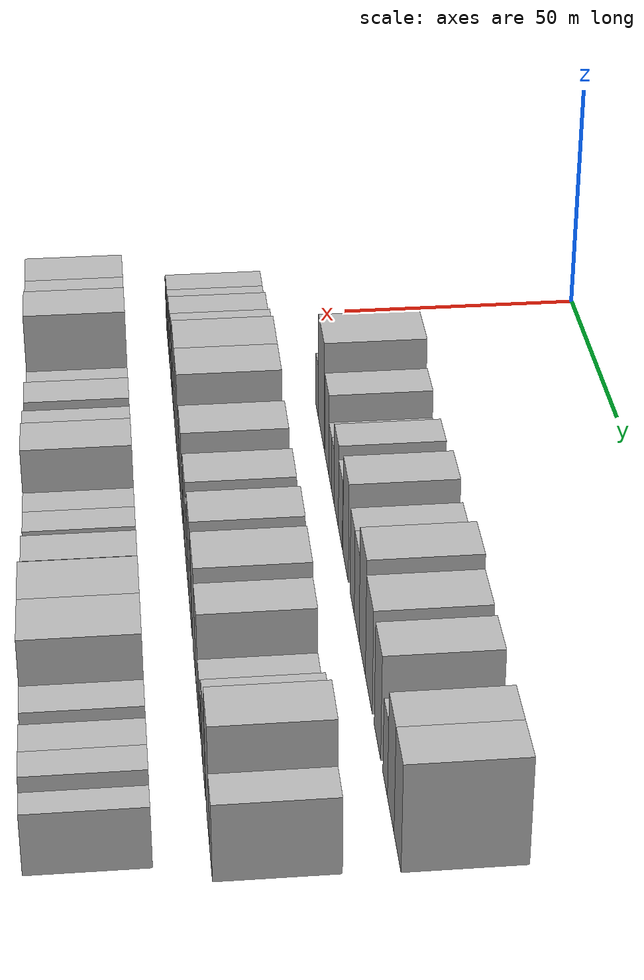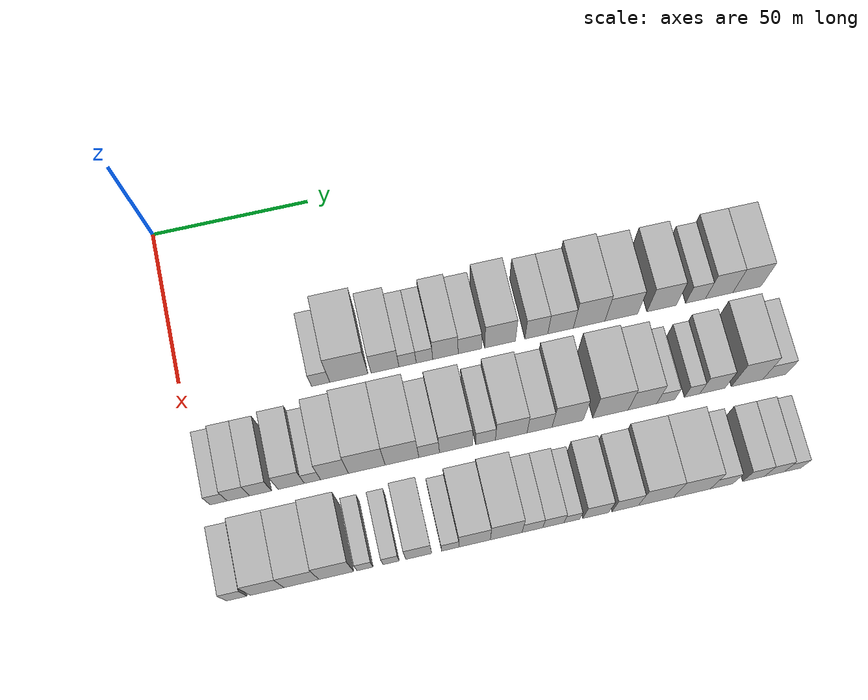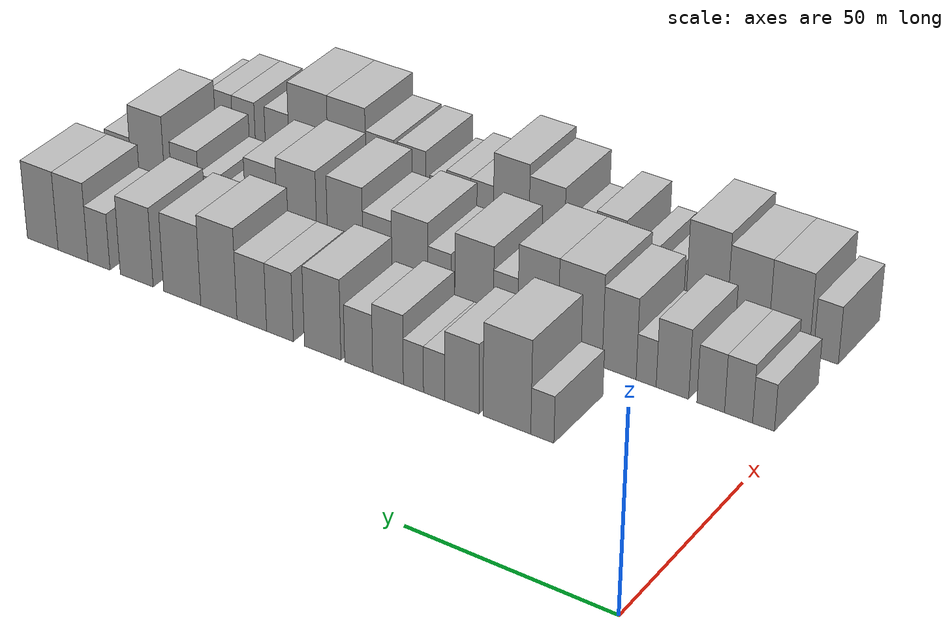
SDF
<sdf version="1.6">
 <world name="default">
  <model name="building_40">
   <static>1</static>
   <pose>50.0000 42.2225 0 0.000000 0.000000 0.000000</pose>
   <link name="link">
    <pose>0 0 6.00 0 0 0</pose>
    <collision name="collision"><geometry><box><size>20.0000 5.7035 12.0000</size></box></geometry></collision>
    <visual name="visual">
     <cast_shadows>0</cast_shadows>
     <geometry><box><size>20.0000 5.7035 12.0000</size></box></geometry>
     <material>
      <script>
       <uri>model://HANNAS_wall/materials/scripts</uri>
       <uri>model://HANNAS_wall/materials/textures</uri>
       <name>vrc/HANNAS_wall</name>
      </script>
     </material>
    </visual>
   </link>
  </model>
  <model name="building_41">
   <static>1</static>
   <pose>50.0000 51.0257 0 0.000000 0.000000 0.000000</pose>
   <link name="link">
    <pose>0 0 12.00 0 0 0</pose>
    <collision name="collision"><geometry><box><size>20.0000 11.9029 24.0000</size></box></geometry></collision>
    <visual name="visual">
     <cast_shadows>0</cast_shadows>
     <geometry><box><size>20.0000 11.9029 24.0000</size></box></geometry>
     <material>
      <script>
       <uri>model://HANNAS_wall/materials/scripts</uri>
       <uri>model://HANNAS_wall/materials/textures</uri>
       <name>vrc/HANNAS_wall</name>
      </script>
     </material>
    </visual>
   </link>
  </model>
  <model name="building_42">
   <static>1</static>
   <pose>50.0000 62.3337 0 0.000000 0.000000 0.000000</pose>
   <link name="link">
    <pose>0 0 9.00 0 0 0</pose>
    <collision name="collision"><geometry><box><size>20.0000 8.7130 18.0000</size></box></geometry></collision>
    <visual name="visual">
     <cast_shadows>0</cast_shadows>
     <geometry><box><size>20.0000 8.7130 18.0000</size></box></geometry>
     <material>
      <script>
       <uri>model://HANNAS_wall/materials/scripts</uri>
       <uri>model://HANNAS_wall/materials/textures</uri>
       <name>vrc/HANNAS_wall</name>
      </script>
     </material>
    </visual>
   </link>
  </model>
  <model name="building_43">
   <static>1</static>
   <pose>50.0000 69.3938 0 0.000000 0.000000 0.000000</pose>
   <link name="link">
    <pose>0 0 6.00 0 0 0</pose>
    <collision name="collision"><geometry><box><size>20.0000 5.4072 12.0000</size></box></geometry></collision>
    <visual name="visual">
     <cast_shadows>0</cast_shadows>
     <geometry><box><size>20.0000 5.4072 12.0000</size></box></geometry>
     <material>
      <script>
       <uri>model://HANNAS_wall/materials/scripts</uri>
       <uri>model://HANNAS_wall/materials/textures</uri>
       <name>vrc/HANNAS_wall</name>
      </script>
     </material>
    </visual>
   </link>
  </model>
  <model name="building_44">
   <static>1</static>
   <pose>50.0000 74.6967 0 0.000000 0.000000 0.000000</pose>
   <link name="link">
    <pose>0 0 6.00 0 0 0</pose>
    <collision name="collision"><geometry><box><size>20.0000 5.1987 12.0000</size></box></geometry></collision>
    <visual name="visual">
     <cast_shadows>0</cast_shadows>
     <geometry><box><size>20.0000 5.1987 12.0000</size></box></geometry>
     <material>
      <script>
       <uri>model://HANNAS_wall/materials/scripts</uri>
       <uri>model://HANNAS_wall/materials/textures</uri>
       <name>vrc/HANNAS_wall</name>
      </script>
     </material>
    </visual>
   </link>
  </model>
  <model name="building_45">
   <static>1</static>
   <pose>50.0000 81.2949 0 0.000000 0.000000 0.000000</pose>
   <link name="link">
    <pose>0 0 9.00 0 0 0</pose>
    <collision name="collision"><geometry><box><size>20.0000 7.9976 18.0000</size></box></geometry></collision>
    <visual name="visual">
     <cast_shadows>0</cast_shadows>
     <geometry><box><size>20.0000 7.9976 18.0000</size></box></geometry>
     <material>
      <script>
       <uri>model://HANNAS_wall/materials/scripts</uri>
       <uri>model://HANNAS_wall/materials/textures</uri>
       <name>vrc/HANNAS_wall</name>
      </script>
     </material>
    </visual>
   </link>
  </model>
  <model name="building_46">
   <static>1</static>
   <pose>50.0000 88.9735 0 0.000000 0.000000 0.000000</pose>
   <link name="link">
    <pose>0 0 7.50 0 0 0</pose>
    <collision name="collision"><geometry><box><size>20.0000 7.3596 15.0000</size></box></geometry></collision>
    <visual name="visual">
     <cast_shadows>0</cast_shadows>
     <geometry><box><size>20.0000 7.3596 15.0000</size></box></geometry>
     <material>
      <script>
       <uri>model://HANNAS_wall/materials/scripts</uri>
       <uri>model://HANNAS_wall/materials/textures</uri>
       <name>vrc/HANNAS_wall</name>
      </script>
     </material>
    </visual>
   </link>
  </model>
  <model name="building_47">
   <static>1</static>
   <pose>50.0000 98.5302 0 0.000000 0.000000 0.000000</pose>
   <link name="link">
    <pose>0 0 10.50 0 0 0</pose>
    <collision name="collision"><geometry><box><size>20.0000 9.7538 21.0000</size></box></geometry></collision>
    <visual name="visual">
     <cast_shadows>0</cast_shadows>
     <geometry><box><size>20.0000 9.7538 21.0000</size></box></geometry>
     <material>
      <script>
       <uri>model://HANNAS_wall/materials/scripts</uri>
       <uri>model://HANNAS_wall/materials/textures</uri>
       <name>vrc/HANNAS_wall</name>
      </script>
     </material>
    </visual>
   </link>
  </model>
  <model name="building_48">
   <static>1</static>
   <pose>50.0000 110.0364 0 0.000000 0.000000 0.000000</pose>
   <link name="link">
    <pose>0 0 9.00 0 0 0</pose>
    <collision name="collision"><geometry><box><size>20.0000 7.2588 18.0000</size></box></geometry></collision>
    <visual name="visual">
     <cast_shadows>0</cast_shadows>
     <geometry><box><size>20.0000 7.2588 18.0000</size></box></geometry>
     <material>
      <script>
       <uri>model://HANNAS_wall/materials/scripts</uri>
       <uri>model://HANNAS_wall/materials/textures</uri>
       <name>vrc/HANNAS_wall</name>
      </script>
     </material>
    </visual>
   </link>
  </model>
  <model name="building_49">
   <static>1</static>
   <pose>50.0000 117.7422 0 0.000000 0.000000 0.000000</pose>
   <link name="link">
    <pose>0 0 9.00 0 0 0</pose>
    <collision name="collision"><geometry><box><size>20.0000 8.1528 18.0000</size></box></geometry></collision>
    <visual name="visual">
     <cast_shadows>0</cast_shadows>
     <geometry><box><size>20.0000 8.1528 18.0000</size></box></geometry>
     <material>
      <script>
       <uri>model://HANNAS_wall/materials/scripts</uri>
       <uri>model://HANNAS_wall/materials/textures</uri>
       <name>vrc/HANNAS_wall</name>
      </script>
     </material>
    </visual>
   </link>
  </model>
  <model name="building_50">
   <static>1</static>
   <pose>50.0000 126.8508 0 0.000000 0.000000 0.000000</pose>
   <link name="link">
    <pose>0 0 12.00 0 0 0</pose>
    <collision name="collision"><geometry><box><size>20.0000 10.0644 24.0000</size></box></geometry></collision>
    <visual name="visual">
     <cast_shadows>0</cast_shadows>
     <geometry><box><size>20.0000 10.0644 24.0000</size></box></geometry>
     <material>
      <script>
       <uri>model://HANNAS_wall/materials/scripts</uri>
       <uri>model://HANNAS_wall/materials/textures</uri>
       <name>vrc/HANNAS_wall</name>
      </script>
     </material>
    </visual>
   </link>
  </model>
  <model name="building_51">
   <static>1</static>
   <pose>50.0000 137.1314 0 0.000000 0.000000 0.000000</pose>
   <link name="link">
    <pose>0 0 10.50 0 0 0</pose>
    <collision name="collision"><geometry><box><size>20.0000 10.4969 21.0000</size></box></geometry></collision>
    <visual name="visual">
     <cast_shadows>0</cast_shadows>
     <geometry><box><size>20.0000 10.4969 21.0000</size></box></geometry>
     <material>
      <script>
       <uri>model://HANNAS_wall/materials/scripts</uri>
       <uri>model://HANNAS_wall/materials/textures</uri>
       <name>vrc/HANNAS_wall</name>
      </script>
     </material>
    </visual>
   </link>
  </model>
  <model name="building_52">
   <static>1</static>
   <pose>50.0000 150.1075 0 0.000000 0.000000 0.000000</pose>
   <link name="link">
    <pose>0 0 10.50 0 0 0</pose>
    <collision name="collision"><geometry><box><size>20.0000 9.4551 21.0000</size></box></geometry></collision>
    <visual name="visual">
     <cast_shadows>0</cast_shadows>
     <geometry><box><size>20.0000 9.4551 21.0000</size></box></geometry>
     <material>
      <script>
       <uri>model://HANNAS_wall/materials/scripts</uri>
       <uri>model://HANNAS_wall/materials/textures</uri>
       <name>vrc/HANNAS_wall</name>
      </script>
     </material>
    </visual>
   </link>
  </model>
  <model name="building_53">
   <static>1</static>
   <pose>50.0000 161.0399 0 0.000000 0.000000 0.000000</pose>
   <link name="link">
    <pose>0 0 7.50 0 0 0</pose>
    <collision name="collision"><geometry><box><size>20.0000 6.4098 15.0000</size></box></geometry></collision>
    <visual name="visual">
     <cast_shadows>0</cast_shadows>
     <geometry><box><size>20.0000 6.4098 15.0000</size></box></geometry>
     <material>
      <script>
       <uri>model://HANNAS_wall/materials/scripts</uri>
       <uri>model://HANNAS_wall/materials/textures</uri>
       <name>vrc/HANNAS_wall</name>
      </script>
     </material>
    </visual>
   </link>
  </model>
  <model name="building_54">
   <static>1</static>
   <pose>50.0000 168.6595 0 0.000000 0.000000 0.000000</pose>
   <link name="link">
    <pose>0 0 10.50 0 0 0</pose>
    <collision name="collision"><geometry><box><size>20.0000 8.8295 21.0000</size></box></geometry></collision>
    <visual name="visual">
     <cast_shadows>0</cast_shadows>
     <geometry><box><size>20.0000 8.8295 21.0000</size></box></geometry>
     <material>
      <script>
       <uri>model://HANNAS_wall/materials/scripts</uri>
       <uri>model://HANNAS_wall/materials/textures</uri>
       <name>vrc/HANNAS_wall</name>
      </script>
     </material>
    </visual>
   </link>
  </model>
  <model name="building_55">
   <static>1</static>
   <pose>50.0000 177.6646 0 0.000000 0.000000 0.000000</pose>
   <link name="link">
    <pose>0 0 10.50 0 0 0</pose>
    <collision name="collision"><geometry><box><size>20.0000 9.1806 21.0000</size></box></geometry></collision>
    <visual name="visual">
     <cast_shadows>0</cast_shadows>
     <geometry><box><size>20.0000 9.1806 21.0000</size></box></geometry>
     <material>
      <script>
       <uri>model://HANNAS_wall/materials/scripts</uri>
       <uri>model://HANNAS_wall/materials/textures</uri>
       <name>vrc/HANNAS_wall</name>
      </script>
     </material>
    </visual>
   </link>
  </model>
  <model name="building_112">
   <static>1</static>
   <pose>79.0000 5.4487 0 0.000000 0.000000 0.000000</pose>
   <link name="link">
    <pose>0 0 6.00 0 0 0</pose>
    <collision name="collision"><geometry><box><size>20.0000 5.1969 12.0000</size></box></geometry></collision>
    <visual name="visual">
     <cast_shadows>0</cast_shadows>
     <geometry><box><size>20.0000 5.1969 12.0000</size></box></geometry>
     <material>
      <script>
       <uri>model://HANNAS_wall/materials/scripts</uri>
       <uri>model://HANNAS_wall/materials/textures</uri>
       <name>vrc/HANNAS_wall</name>
      </script>
     </material>
    </visual>
   </link>
  </model>
  <model name="building_113">
   <static>1</static>
   <pose>79.0000 11.4059 0 0.000000 0.000000 0.000000</pose>
   <link name="link">
    <pose>0 0 7.50 0 0 0</pose>
    <collision name="collision"><geometry><box><size>20.0000 6.7175 15.0000</size></box></geometry></collision>
    <visual name="visual">
     <cast_shadows>0</cast_shadows>
     <geometry><box><size>20.0000 6.7175 15.0000</size></box></geometry>
     <material>
      <script>
       <uri>model://HANNAS_wall/materials/scripts</uri>
       <uri>model://HANNAS_wall/materials/textures</uri>
       <name>vrc/HANNAS_wall</name>
      </script>
     </material>
    </visual>
   </link>
  </model>
  <model name="building_114">
   <static>1</static>
   <pose>79.0000 18.1170 0 0.000000 0.000000 0.000000</pose>
   <link name="link">
    <pose>0 0 7.50 0 0 0</pose>
    <collision name="collision"><geometry><box><size>20.0000 6.7046 15.0000</size></box></geometry></collision>
    <visual name="visual">
     <cast_shadows>0</cast_shadows>
     <geometry><box><size>20.0000 6.7046 15.0000</size></box></geometry>
     <material>
      <script>
       <uri>model://HANNAS_wall/materials/scripts</uri>
       <uri>model://HANNAS_wall/materials/textures</uri>
       <name>vrc/HANNAS_wall</name>
      </script>
     </material>
    </visual>
   </link>
  </model>
  <model name="building_115">
   <static>1</static>
   <pose>79.0000 27.4595 0 0.000000 0.000000 0.000000</pose>
   <link name="link">
    <pose>0 0 9.00 0 0 0</pose>
    <collision name="collision"><geometry><box><size>20.0000 7.9805 18.0000</size></box></geometry></collision>
    <visual name="visual">
     <cast_shadows>0</cast_shadows>
     <geometry><box><size>20.0000 7.9805 18.0000</size></box></geometry>
     <material>
      <script>
       <uri>model://HANNAS_wall/materials/scripts</uri>
       <uri>model://HANNAS_wall/materials/textures</uri>
       <name>vrc/HANNAS_wall</name>
      </script>
     </material>
    </visual>
   </link>
  </model>
  <model name="building_116">
   <static>1</static>
   <pose>79.0000 33.9303 0 0.000000 0.000000 0.000000</pose>
   <link name="link">
    <pose>0 0 6.00 0 0 0</pose>
    <collision name="collision"><geometry><box><size>20.0000 4.9611 12.0000</size></box></geometry></collision>
    <visual name="visual">
     <cast_shadows>0</cast_shadows>
     <geometry><box><size>20.0000 4.9611 12.0000</size></box></geometry>
     <material>
      <script>
       <uri>model://HANNAS_wall/materials/scripts</uri>
       <uri>model://HANNAS_wall/materials/textures</uri>
       <name>vrc/HANNAS_wall</name>
      </script>
     </material>
    </visual>
   </link>
  </model>
  <model name="building_117">
   <static>1</static>
   <pose>79.0000 40.6628 0 0.000000 0.000000 0.000000</pose>
   <link name="link">
    <pose>0 0 10.50 0 0 0</pose>
    <collision name="collision"><geometry><box><size>20.0000 8.5040 21.0000</size></box></geometry></collision>
    <visual name="visual">
     <cast_shadows>0</cast_shadows>
     <geometry><box><size>20.0000 8.5040 21.0000</size></box></geometry>
     <material>
      <script>
       <uri>model://HANNAS_wall/materials/scripts</uri>
       <uri>model://HANNAS_wall/materials/textures</uri>
       <name>vrc/HANNAS_wall</name>
      </script>
     </material>
    </visual>
   </link>
  </model>
  <model name="building_118">
   <static>1</static>
   <pose>79.0000 50.5598 0 0.000000 0.000000 0.000000</pose>
   <link name="link">
    <pose>0 0 12.00 0 0 0</pose>
    <collision name="collision"><geometry><box><size>20.0000 11.2899 24.0000</size></box></geometry></collision>
    <visual name="visual">
     <cast_shadows>0</cast_shadows>
     <geometry><box><size>20.0000 11.2899 24.0000</size></box></geometry>
     <material>
      <script>
       <uri>model://HANNAS_wall/materials/scripts</uri>
       <uri>model://HANNAS_wall/materials/textures</uri>
       <name>vrc/HANNAS_wall</name>
      </script>
     </material>
    </visual>
   </link>
  </model>
  <model name="building_119">
   <static>1</static>
   <pose>79.0000 61.3663 0 0.000000 0.000000 0.000000</pose>
   <link name="link">
    <pose>0 0 12.00 0 0 0</pose>
    <collision name="collision"><geometry><box><size>20.0000 10.3231 24.0000</size></box></geometry></collision>
    <visual name="visual">
     <cast_shadows>0</cast_shadows>
     <geometry><box><size>20.0000 10.3231 24.0000</size></box></geometry>
     <material>
      <script>
       <uri>model://HANNAS_wall/materials/scripts</uri>
       <uri>model://HANNAS_wall/materials/textures</uri>
       <name>vrc/HANNAS_wall</name>
      </script>
     </material>
    </visual>
   </link>
  </model>
  <model name="building_120">
   <static>1</static>
   <pose>79.0000 69.7067 0 0.000000 0.000000 0.000000</pose>
   <link name="link">
    <pose>0 0 7.50 0 0 0</pose>
    <collision name="collision"><geometry><box><size>20.0000 6.3578 15.0000</size></box></geometry></collision>
    <visual name="visual">
     <cast_shadows>0</cast_shadows>
     <geometry><box><size>20.0000 6.3578 15.0000</size></box></geometry>
     <material>
      <script>
       <uri>model://HANNAS_wall/materials/scripts</uri>
       <uri>model://HANNAS_wall/materials/textures</uri>
       <name>vrc/HANNAS_wall</name>
      </script>
     </material>
    </visual>
   </link>
  </model>
  <model name="building_121">
   <static>1</static>
   <pose>79.0000 77.9744 0 0.000000 0.000000 0.000000</pose>
   <link name="link">
    <pose>0 0 10.50 0 0 0</pose>
    <collision name="collision"><geometry><box><size>20.0000 10.1776 21.0000</size></box></geometry></collision>
    <visual name="visual">
     <cast_shadows>0</cast_shadows>
     <geometry><box><size>20.0000 10.1776 21.0000</size></box></geometry>
     <material>
      <script>
       <uri>model://HANNAS_wall/materials/scripts</uri>
       <uri>model://HANNAS_wall/materials/textures</uri>
       <name>vrc/HANNAS_wall</name>
      </script>
     </material>
    </visual>
   </link>
  </model>
  <model name="building_122">
   <static>1</static>
   <pose>79.0000 87.1251 0 0.000000 0.000000 0.000000</pose>
   <link name="link">
    <pose>0 0 7.50 0 0 0</pose>
    <collision name="collision"><geometry><box><size>20.0000 6.1237 15.0000</size></box></geometry></collision>
    <visual name="visual">
     <cast_shadows>0</cast_shadows>
     <geometry><box><size>20.0000 6.1237 15.0000</size></box></geometry>
     <material>
      <script>
       <uri>model://HANNAS_wall/materials/scripts</uri>
       <uri>model://HANNAS_wall/materials/textures</uri>
       <name>vrc/HANNAS_wall</name>
      </script>
     </material>
    </visual>
   </link>
  </model>
  <model name="building_123">
   <static>1</static>
   <pose>79.0000 95.0908 0 0.000000 0.000000 0.000000</pose>
   <link name="link">
    <pose>0 0 10.50 0 0 0</pose>
    <collision name="collision"><geometry><box><size>20.0000 9.8077 21.0000</size></box></geometry></collision>
    <visual name="visual">
     <cast_shadows>0</cast_shadows>
     <geometry><box><size>20.0000 9.8077 21.0000</size></box></geometry>
     <material>
      <script>
       <uri>model://HANNAS_wall/materials/scripts</uri>
       <uri>model://HANNAS_wall/materials/textures</uri>
       <name>vrc/HANNAS_wall</name>
      </script>
     </material>
    </visual>
   </link>
  </model>
  <model name="building_124">
   <static>1</static>
   <pose>79.0000 103.8927 0 0.000000 0.000000 0.000000</pose>
   <link name="link">
    <pose>0 0 9.00 0 0 0</pose>
    <collision name="collision"><geometry><box><size>20.0000 7.7961 18.0000</size></box></geometry></collision>
    <visual name="visual">
     <cast_shadows>0</cast_shadows>
     <geometry><box><size>20.0000 7.7961 18.0000</size></box></geometry>
     <material>
      <script>
       <uri>model://HANNAS_wall/materials/scripts</uri>
       <uri>model://HANNAS_wall/materials/textures</uri>
       <name>vrc/HANNAS_wall</name>
      </script>
     </material>
    </visual>
   </link>
  </model>
  <model name="building_125">
   <static>1</static>
   <pose>79.0000 112.6618 0 0.000000 0.000000 0.000000</pose>
   <link name="link">
    <pose>0 0 12.00 0 0 0</pose>
    <collision name="collision"><geometry><box><size>20.0000 9.7422 24.0000</size></box></geometry></collision>
    <visual name="visual">
     <cast_shadows>0</cast_shadows>
     <geometry><box><size>20.0000 9.7422 24.0000</size></box></geometry>
     <material>
      <script>
       <uri>model://HANNAS_wall/materials/scripts</uri>
       <uri>model://HANNAS_wall/materials/textures</uri>
       <name>vrc/HANNAS_wall</name>
      </script>
     </material>
    </visual>
   </link>
  </model>
  <model name="building_126">
   <static>1</static>
   <pose>79.0000 126.0954 0 0.000000 0.000000 0.000000</pose>
   <link name="link">
    <pose>0 0 12.00 0 0 0</pose>
    <collision name="collision"><geometry><box><size>20.0000 11.1251 24.0000</size></box></geometry></collision>
    <visual name="visual">
     <cast_shadows>0</cast_shadows>
     <geometry><box><size>20.0000 11.1251 24.0000</size></box></geometry>
     <material>
      <script>
       <uri>model://HANNAS_wall/materials/scripts</uri>
       <uri>model://HANNAS_wall/materials/textures</uri>
       <name>vrc/HANNAS_wall</name>
      </script>
     </material>
    </visual>
   </link>
  </model>
  <model name="building_127">
   <static>1</static>
   <pose>79.0000 136.1715 0 0.000000 0.000000 0.000000</pose>
   <link name="link">
    <pose>0 0 10.50 0 0 0</pose>
    <collision name="collision"><geometry><box><size>20.0000 9.0270 21.0000</size></box></geometry></collision>
    <visual name="visual">
     <cast_shadows>0</cast_shadows>
     <geometry><box><size>20.0000 9.0270 21.0000</size></box></geometry>
     <material>
      <script>
       <uri>model://HANNAS_wall/materials/scripts</uri>
       <uri>model://HANNAS_wall/materials/textures</uri>
       <name>vrc/HANNAS_wall</name>
      </script>
     </material>
    </visual>
   </link>
  </model>
  <model name="building_128">
   <static>1</static>
   <pose>79.0000 143.5346 0 0.000000 0.000000 0.000000</pose>
   <link name="link">
    <pose>0 0 6.00 0 0 0</pose>
    <collision name="collision"><geometry><box><size>20.0000 5.6992 12.0000</size></box></geometry></collision>
    <visual name="visual">
     <cast_shadows>0</cast_shadows>
     <geometry><box><size>20.0000 5.6992 12.0000</size></box></geometry>
     <material>
      <script>
       <uri>model://HANNAS_wall/materials/scripts</uri>
       <uri>model://HANNAS_wall/materials/textures</uri>
       <name>vrc/HANNAS_wall</name>
      </script>
     </material>
    </visual>
   </link>
  </model>
  <model name="building_129">
   <static>1</static>
   <pose>79.0000 151.8146 0 0.000000 0.000000 0.000000</pose>
   <link name="link">
    <pose>0 0 6.00 0 0 0</pose>
    <collision name="collision"><geometry><box><size>20.0000 4.8608 12.0000</size></box></geometry></collision>
    <visual name="visual">
     <cast_shadows>0</cast_shadows>
     <geometry><box><size>20.0000 4.8608 12.0000</size></box></geometry>
     <material>
      <script>
       <uri>model://HANNAS_wall/materials/scripts</uri>
       <uri>model://HANNAS_wall/materials/textures</uri>
       <name>vrc/HANNAS_wall</name>
      </script>
     </material>
    </visual>
   </link>
  </model>
  <model name="building_130">
   <static>1</static>
   <pose>79.0000 158.2450 0 0.000000 0.000000 0.000000</pose>
   <link name="link">
    <pose>0 0 9.00 0 0 0</pose>
    <collision name="collision"><geometry><box><size>20.0000 8.0000 18.0000</size></box></geometry></collision>
    <visual name="visual">
     <cast_shadows>0</cast_shadows>
     <geometry><box><size>20.0000 8.0000 18.0000</size></box></geometry>
     <material>
      <script>
       <uri>model://HANNAS_wall/materials/scripts</uri>
       <uri>model://HANNAS_wall/materials/textures</uri>
       <name>vrc/HANNAS_wall</name>
      </script>
     </material>
    </visual>
   </link>
  </model>
  <model name="building_131">
   <static>1</static>
   <pose>79.0000 169.2528 0 0.000000 0.000000 0.000000</pose>
   <link name="link">
    <pose>0 0 12.00 0 0 0</pose>
    <collision name="collision"><geometry><box><size>20.0000 10.0158 24.0000</size></box></geometry></collision>
    <visual name="visual">
     <cast_shadows>0</cast_shadows>
     <geometry><box><size>20.0000 10.0158 24.0000</size></box></geometry>
     <material>
      <script>
       <uri>model://HANNAS_wall/materials/scripts</uri>
       <uri>model://HANNAS_wall/materials/textures</uri>
       <name>vrc/HANNAS_wall</name>
      </script>
     </material>
    </visual>
   </link>
  </model>
  <model name="building_132">
   <static>1</static>
   <pose>79.0000 177.9942 0 0.000000 0.000000 0.000000</pose>
   <link name="link">
    <pose>0 0 7.50 0 0 0</pose>
    <collision name="collision"><geometry><box><size>20.0000 7.4670 15.0000</size></box></geometry></collision>
    <visual name="visual">
     <cast_shadows>0</cast_shadows>
     <geometry><box><size>20.0000 7.4670 15.0000</size></box></geometry>
     <material>
      <script>
       <uri>model://HANNAS_wall/materials/scripts</uri>
       <uri>model://HANNAS_wall/materials/textures</uri>
       <name>vrc/HANNAS_wall</name>
      </script>
     </material>
    </visual>
   </link>
  </model>
  <model name="building_191">
   <static>1</static>
   <pose>108.0000 5.6289 0 0.000000 0.000000 0.000000</pose>
   <link name="link">
    <pose>0 0 7.50 0 0 0</pose>
    <collision name="collision"><geometry><box><size>20.0000 6.0773 15.0000</size></box></geometry></collision>
    <visual name="visual">
     <cast_shadows>0</cast_shadows>
     <geometry><box><size>20.0000 6.0773 15.0000</size></box></geometry>
     <material>
      <script>
       <uri>model://HANNAS_wall/materials/scripts</uri>
       <uri>model://HANNAS_wall/materials/textures</uri>
       <name>vrc/HANNAS_wall</name>
      </script>
     </material>
    </visual>
   </link>
  </model>
  <model name="building_192">
   <static>1</static>
   <pose>108.0000 14.6887 0 0.000000 0.000000 0.000000</pose>
   <link name="link">
    <pose>0 0 10.50 0 0 0</pose>
    <collision name="collision"><geometry><box><size>20.0000 10.0424 21.0000</size></box></geometry></collision>
    <visual name="visual">
     <cast_shadows>0</cast_shadows>
     <geometry><box><size>20.0000 10.0424 21.0000</size></box></geometry>
     <material>
      <script>
       <uri>model://HANNAS_wall/materials/scripts</uri>
       <uri>model://HANNAS_wall/materials/textures</uri>
       <name>vrc/HANNAS_wall</name>
      </script>
     </material>
    </visual>
   </link>
  </model>
  <model name="building_193">
   <static>1</static>
   <pose>108.0000 24.9256 0 0.000000 0.000000 0.000000</pose>
   <link name="link">
    <pose>0 0 10.50 0 0 0</pose>
    <collision name="collision"><geometry><box><size>20.0000 10.4313 21.0000</size></box></geometry></collision>
    <visual name="visual">
     <cast_shadows>0</cast_shadows>
     <geometry><box><size>20.0000 10.4313 21.0000</size></box></geometry>
     <material>
      <script>
       <uri>model://HANNAS_wall/materials/scripts</uri>
       <uri>model://HANNAS_wall/materials/textures</uri>
       <name>vrc/HANNAS_wall</name>
      </script>
     </material>
    </visual>
   </link>
  </model>
  <model name="building_194">
   <static>1</static>
   <pose>108.0000 35.3420 0 0.000000 0.000000 0.000000</pose>
   <link name="link">
    <pose>0 0 12.00 0 0 0</pose>
    <collision name="collision"><geometry><box><size>20.0000 10.4015 24.0000</size></box></geometry></collision>
    <visual name="visual">
     <cast_shadows>0</cast_shadows>
     <geometry><box><size>20.0000 10.4015 24.0000</size></box></geometry>
     <material>
      <script>
       <uri>model://HANNAS_wall/materials/scripts</uri>
       <uri>model://HANNAS_wall/materials/textures</uri>
       <name>vrc/HANNAS_wall</name>
      </script>
     </material>
    </visual>
   </link>
  </model>
  <model name="building_195">
   <static>1</static>
   <pose>108.0000 43.9504 0 0.000000 0.000000 0.000000</pose>
   <link name="link">
    <pose>0 0 6.00 0 0 0</pose>
    <collision name="collision"><geometry><box><size>20.0000 4.8152 12.0000</size></box></geometry></collision>
    <visual name="visual">
     <cast_shadows>0</cast_shadows>
     <geometry><box><size>20.0000 4.8152 12.0000</size></box></geometry>
     <material>
      <script>
       <uri>model://HANNAS_wall/materials/scripts</uri>
       <uri>model://HANNAS_wall/materials/textures</uri>
       <name>vrc/HANNAS_wall</name>
      </script>
     </material>
    </visual>
   </link>
  </model>
  <model name="building_196">
   <static>1</static>
   <pose>108.0000 51.7919 0 0.000000 0.000000 0.000000</pose>
   <link name="link">
    <pose>0 0 6.00 0 0 0</pose>
    <collision name="collision"><geometry><box><size>20.0000 4.8680 12.0000</size></box></geometry></collision>
    <visual name="visual">
     <cast_shadows>0</cast_shadows>
     <geometry><box><size>20.0000 4.8680 12.0000</size></box></geometry>
     <material>
      <script>
       <uri>model://HANNAS_wall/materials/scripts</uri>
       <uri>model://HANNAS_wall/materials/textures</uri>
       <name>vrc/HANNAS_wall</name>
      </script>
     </material>
    </visual>
   </link>
  </model>
  <model name="building_197">
   <static>1</static>
   <pose>108.0000 60.1300 0 0.000000 0.000000 0.000000</pose>
   <link name="link">
    <pose>0 0 9.00 0 0 0</pose>
    <collision name="collision"><geometry><box><size>20.0000 7.8082 18.0000</size></box></geometry></collision>
    <visual name="visual">
     <cast_shadows>0</cast_shadows>
     <geometry><box><size>20.0000 7.8082 18.0000</size></box></geometry>
     <material>
      <script>
       <uri>model://HANNAS_wall/materials/scripts</uri>
       <uri>model://HANNAS_wall/materials/textures</uri>
       <name>vrc/HANNAS_wall</name>
      </script>
     </material>
    </visual>
   </link>
  </model>
  <model name="building_198">
   <static>1</static>
   <pose>108.0000 69.6611 0 0.000000 0.000000 0.000000</pose>
   <link name="link">
    <pose>0 0 6.00 0 0 0</pose>
    <collision name="collision"><geometry><box><size>20.0000 5.2540 12.0000</size></box></geometry></collision>
    <visual name="visual">
     <cast_shadows>0</cast_shadows>
     <geometry><box><size>20.0000 5.2540 12.0000</size></box></geometry>
     <material>
      <script>
       <uri>model://HANNAS_wall/materials/scripts</uri>
       <uri>model://HANNAS_wall/materials/textures</uri>
       <name>vrc/HANNAS_wall</name>
      </script>
     </material>
    </visual>
   </link>
  </model>
  <model name="building_199">
   <static>1</static>
   <pose>108.0000 77.0294 0 0.000000 0.000000 0.000000</pose>
   <link name="link">
    <pose>0 0 10.50 0 0 0</pose>
    <collision name="collision"><geometry><box><size>20.0000 9.4827 21.0000</size></box></geometry></collision>
    <visual name="visual">
     <cast_shadows>0</cast_shadows>
     <geometry><box><size>20.0000 9.4827 21.0000</size></box></geometry>
     <material>
      <script>
       <uri>model://HANNAS_wall/materials/scripts</uri>
       <uri>model://HANNAS_wall/materials/textures</uri>
       <name>vrc/HANNAS_wall</name>
      </script>
     </material>
    </visual>
   </link>
  </model>
  <model name="building_200">
   <static>1</static>
   <pose>108.0000 86.5829 0 0.000000 0.000000 0.000000</pose>
   <link name="link">
    <pose>0 0 12.00 0 0 0</pose>
    <collision name="collision"><geometry><box><size>20.0000 9.6242 24.0000</size></box></geometry></collision>
    <visual name="visual">
     <cast_shadows>0</cast_shadows>
     <geometry><box><size>20.0000 9.6242 24.0000</size></box></geometry>
     <material>
      <script>
       <uri>model://HANNAS_wall/materials/scripts</uri>
       <uri>model://HANNAS_wall/materials/textures</uri>
       <name>vrc/HANNAS_wall</name>
      </script>
     </material>
    </visual>
   </link>
  </model>
  <model name="building_201">
   <static>1</static>
   <pose>108.0000 94.5493 0 0.000000 0.000000 0.000000</pose>
   <link name="link">
    <pose>0 0 7.50 0 0 0</pose>
    <collision name="collision"><geometry><box><size>20.0000 6.3087 15.0000</size></box></geometry></collision>
    <visual name="visual">
     <cast_shadows>0</cast_shadows>
     <geometry><box><size>20.0000 6.3087 15.0000</size></box></geometry>
     <material>
      <script>
       <uri>model://HANNAS_wall/materials/scripts</uri>
       <uri>model://HANNAS_wall/materials/textures</uri>
       <name>vrc/HANNAS_wall</name>
      </script>
     </material>
    </visual>
   </link>
  </model>
  <model name="building_202">
   <static>1</static>
   <pose>108.0000 100.9491 0 0.000000 0.000000 0.000000</pose>
   <link name="link">
    <pose>0 0 7.50 0 0 0</pose>
    <collision name="collision"><geometry><box><size>20.0000 6.4910 15.0000</size></box></geometry></collision>
    <visual name="visual">
     <cast_shadows>0</cast_shadows>
     <geometry><box><size>20.0000 6.4910 15.0000</size></box></geometry>
     <material>
      <script>
       <uri>model://HANNAS_wall/materials/scripts</uri>
       <uri>model://HANNAS_wall/materials/textures</uri>
       <name>vrc/HANNAS_wall</name>
      </script>
     </material>
    </visual>
   </link>
  </model>
  <model name="building_203">
   <static>1</static>
   <pose>108.0000 106.6013 0 0.000000 0.000000 0.000000</pose>
   <link name="link">
    <pose>0 0 6.00 0 0 0</pose>
    <collision name="collision"><geometry><box><size>20.0000 4.8134 12.0000</size></box></geometry></collision>
    <visual name="visual">
     <cast_shadows>0</cast_shadows>
     <geometry><box><size>20.0000 4.8134 12.0000</size></box></geometry>
     <material>
      <script>
       <uri>model://HANNAS_wall/materials/scripts</uri>
       <uri>model://HANNAS_wall/materials/textures</uri>
       <name>vrc/HANNAS_wall</name>
      </script>
     </material>
    </visual>
   </link>
  </model>
  <model name="building_204">
   <static>1</static>
   <pose>108.0000 113.9919 0 0.000000 0.000000 0.000000</pose>
   <link name="link">
    <pose>0 0 9.00 0 0 0</pose>
    <collision name="collision"><geometry><box><size>20.0000 7.9677 18.0000</size></box></geometry></collision>
    <visual name="visual">
     <cast_shadows>0</cast_shadows>
     <geometry><box><size>20.0000 7.9677 18.0000</size></box></geometry>
     <material>
      <script>
       <uri>model://HANNAS_wall/materials/scripts</uri>
       <uri>model://HANNAS_wall/materials/textures</uri>
       <name>vrc/HANNAS_wall</name>
      </script>
     </material>
    </visual>
   </link>
  </model>
  <model name="building_205">
   <static>1</static>
   <pose>108.0000 123.0114 0 0.000000 0.000000 0.000000</pose>
   <link name="link">
    <pose>0 0 9.00 0 0 0</pose>
    <collision name="collision"><geometry><box><size>20.0000 8.0714 18.0000</size></box></geometry></collision>
    <visual name="visual">
     <cast_shadows>0</cast_shadows>
     <geometry><box><size>20.0000 8.0714 18.0000</size></box></geometry>
     <material>
      <script>
       <uri>model://HANNAS_wall/materials/scripts</uri>
       <uri>model://HANNAS_wall/materials/textures</uri>
       <name>vrc/HANNAS_wall</name>
      </script>
     </material>
    </visual>
   </link>
  </model>
  <model name="building_206">
   <static>1</static>
   <pose>108.0000 132.4903 0 0.000000 0.000000 0.000000</pose>
   <link name="link">
    <pose>0 0 12.00 0 0 0</pose>
    <collision name="collision"><geometry><box><size>20.0000 10.8863 24.0000</size></box></geometry></collision>
    <visual name="visual">
     <cast_shadows>0</cast_shadows>
     <geometry><box><size>20.0000 10.8863 24.0000</size></box></geometry>
     <material>
      <script>
       <uri>model://HANNAS_wall/materials/scripts</uri>
       <uri>model://HANNAS_wall/materials/textures</uri>
       <name>vrc/HANNAS_wall</name>
      </script>
     </material>
    </visual>
   </link>
  </model>
  <model name="building_207">
   <static>1</static>
   <pose>108.0000 143.6489 0 0.000000 0.000000 0.000000</pose>
   <link name="link">
    <pose>0 0 12.00 0 0 0</pose>
    <collision name="collision"><geometry><box><size>20.0000 11.4311 24.0000</size></box></geometry></collision>
    <visual name="visual">
     <cast_shadows>0</cast_shadows>
     <geometry><box><size>20.0000 11.4311 24.0000</size></box></geometry>
     <material>
      <script>
       <uri>model://HANNAS_wall/materials/scripts</uri>
       <uri>model://HANNAS_wall/materials/textures</uri>
       <name>vrc/HANNAS_wall</name>
      </script>
     </material>
    </visual>
   </link>
  </model>
  <model name="building_208">
   <static>1</static>
   <pose>108.0000 152.8944 0 0.000000 0.000000 0.000000</pose>
   <link name="link">
    <pose>0 0 7.50 0 0 0</pose>
    <collision name="collision"><geometry><box><size>20.0000 7.0598 15.0000</size></box></geometry></collision>
    <visual name="visual">
     <cast_shadows>0</cast_shadows>
     <geometry><box><size>20.0000 7.0598 15.0000</size></box></geometry>
     <material>
      <script>
       <uri>model://HANNAS_wall/materials/scripts</uri>
       <uri>model://HANNAS_wall/materials/textures</uri>
       <name>vrc/HANNAS_wall</name>
      </script>
     </material>
    </visual>
   </link>
  </model>
  <model name="building_209">
   <static>1</static>
   <pose>108.0000 162.8093 0 0.000000 0.000000 0.000000</pose>
   <link name="link">
    <pose>0 0 7.50 0 0 0</pose>
    <collision name="collision"><geometry><box><size>20.0000 6.7700 15.0000</size></box></geometry></collision>
    <visual name="visual">
     <cast_shadows>0</cast_shadows>
     <geometry><box><size>20.0000 6.7700 15.0000</size></box></geometry>
     <material>
      <script>
       <uri>model://HANNAS_wall/materials/scripts</uri>
       <uri>model://HANNAS_wall/materials/textures</uri>
       <name>vrc/HANNAS_wall</name>
      </script>
     </material>
    </visual>
   </link>
  </model>
  <model name="building_210">
   <static>1</static>
   <pose>108.0000 169.2949 0 0.000000 0.000000 0.000000</pose>
   <link name="link">
    <pose>0 0 7.50 0 0 0</pose>
    <collision name="collision"><geometry><box><size>20.0000 6.2011 15.0000</size></box></geometry></collision>
    <visual name="visual">
     <cast_shadows>0</cast_shadows>
     <geometry><box><size>20.0000 6.2011 15.0000</size></box></geometry>
     <material>
      <script>
       <uri>model://HANNAS_wall/materials/scripts</uri>
       <uri>model://HANNAS_wall/materials/textures</uri>
       <name>vrc/HANNAS_wall</name>
      </script>
     </material>
    </visual>
   </link>
  </model>
  <model name="building_211">
   <static>1</static>
   <pose>108.0000 175.0329 0 0.000000 0.000000 0.000000</pose>
   <link name="link">
    <pose>0 0 6.00 0 0 0</pose>
    <collision name="collision"><geometry><box><size>20.0000 5.2750 12.0000</size></box></geometry></collision>
    <visual name="visual">
     <cast_shadows>0</cast_shadows>
     <geometry><box><size>20.0000 5.2750 12.0000</size></box></geometry>
     <material>
      <script>
       <uri>model://HANNAS_wall/materials/scripts</uri>
       <uri>model://HANNAS_wall/materials/textures</uri>
       <name>vrc/HANNAS_wall</name>
      </script>
     </material>
    </visual>
   </link>
  </model>
 </world>
</sdf>
